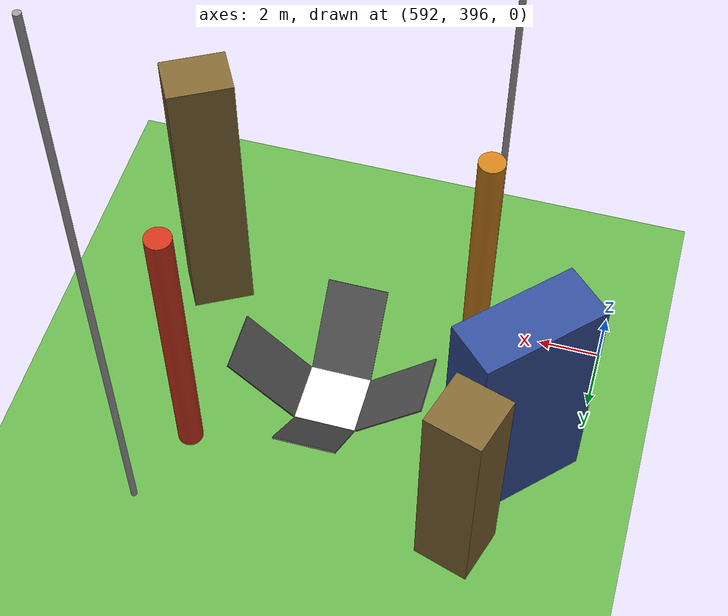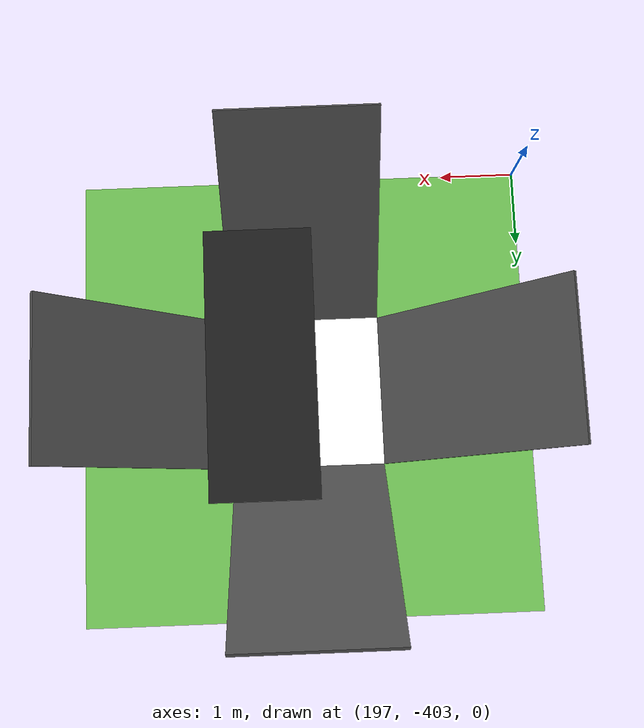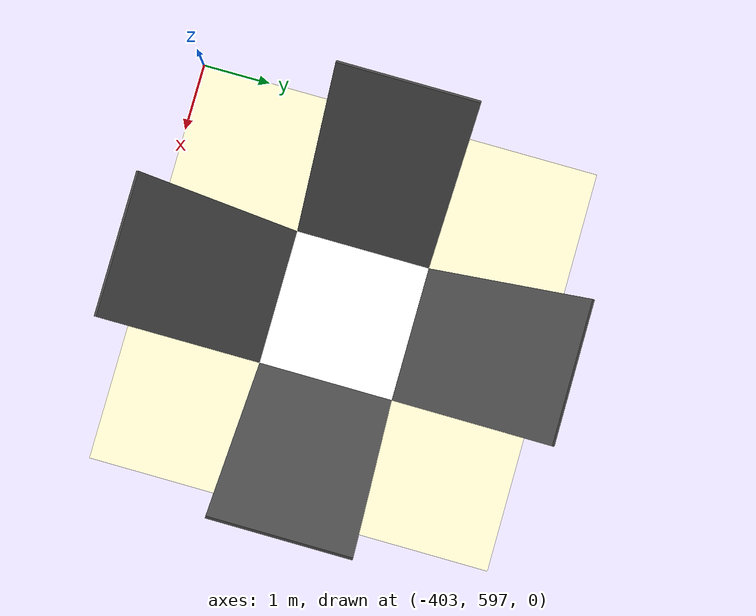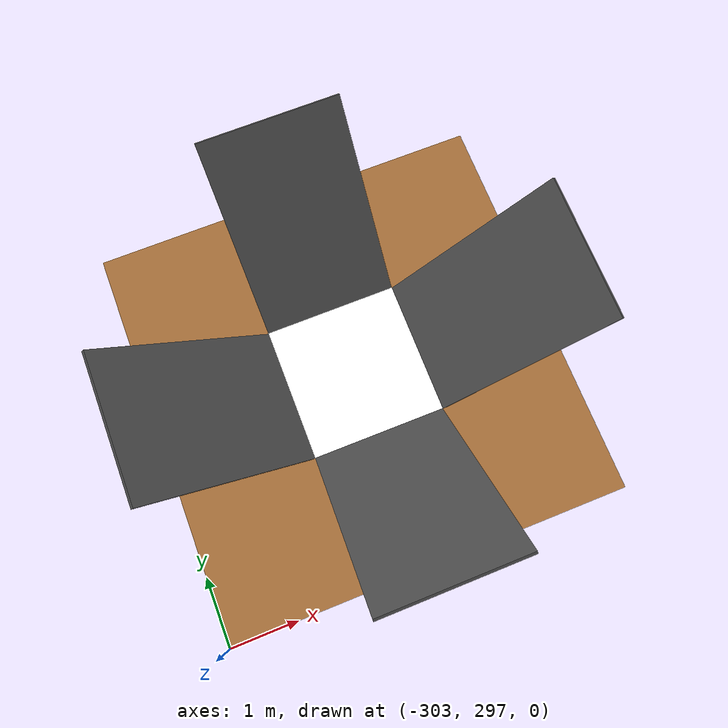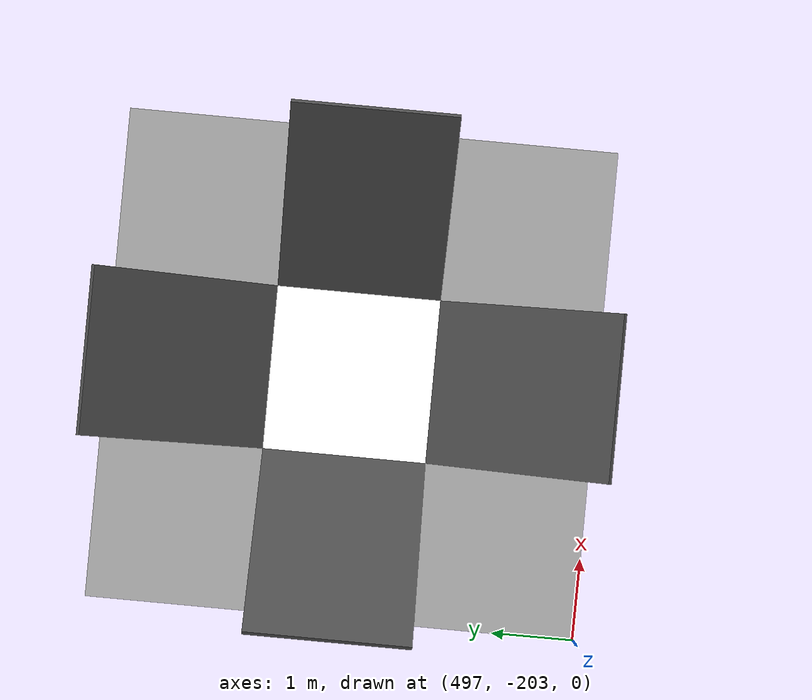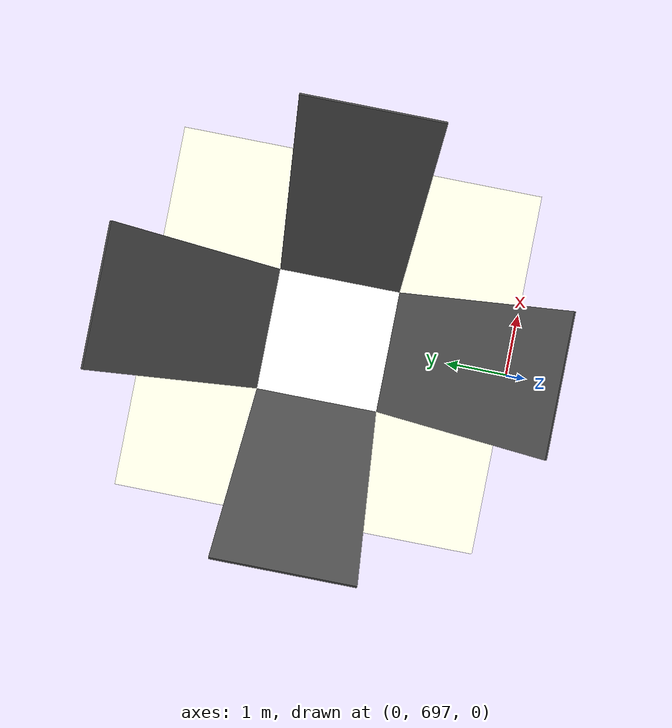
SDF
<sdf version="1.9">
 <world name="zephyr_runway">
  <physics name="1ms" type="ignore">
   <max_step_size>0.001</max_step_size>
   <real_time_factor>1.0</real_time_factor>
  </physics>
  <plugin filename="gz-sim-physics-system" name="gz::sim::systems::Physics"/>
  <plugin filename="gz-sim-user-commands-system" name="gz::sim::systems::UserCommands"/>
  <plugin filename="gz-sim-scene-broadcaster-system" name="gz::sim::systems::SceneBroadcaster"/>
  <plugin filename="gz-sim-imu-system" name="gz::sim::systems::Imu"/>
  <plugin filename="gz-sim-navsat-system" name="gz::sim::systems::NavSat"/>
  <plugin filename="gz-sim-sensors-system" name="gz::sim::systems::Sensors">
   <render_engine>ogre2</render_engine>
  </plugin>
  <scene><ambient>1.0 1.0 1.0</ambient><background>0.8 0.8 0.8</background></scene>
  <spherical_coordinates>
   <latitude_deg>-35.363262</latitude_deg>
   <longitude_deg>149.165237</longitude_deg>
   <elevation>584</elevation>
   <heading_deg>0</heading_deg>
   <surface_model>EARTH_WGS84</surface_model>
  </spherical_coordinates>
  <light type="directional" name="sun_light">
   <pose>0 0 10 0 0 0</pose>
   <diffuse>0.8 0.8 0.8 1</diffuse>
   <specular>0.8 0.8 0.8 1</specular>
   <attenuation>
    <range>1000</range>
    <constant>0.9</constant>
    <linear>0.01</linear>
    <quadratic>0.001</quadratic>
   </attenuation>
   <direction>-0.5 0.1 -0.9</direction>
  </light>
  <include><uri>model://qr_target</uri><pose>-29 500 0.01 0 0 0</pose></include>
  <include><uri>model://qr_toprak</uri><pose>-300 300 0.01 0 0 0</pose></include>
  <include><uri>model://qr_beton</uri><pose>500 -200 0.01 0 0 0</pose></include>
  <include><uri>model://qr_karisik</uri><pose>-500 -200 0.01 0 0 0</pose></include>
  <include><uri>model://qr_parlak</uri><pose>0 700 0.01 0 0 0</pose></include>
  <include><uri>model://qr_golge</uri><pose>400 600 0.01 0 0 0</pose></include>
  <include><uri>model://qr_karsiaydinlatma</uri><pose>-400 600 0.01 0 0 0</pose></include>
  <include><uri>model://qr_kismigolge</uri><pose>200 -400 0.01 0 0 0</pose></include>
  <include><uri>model://qr_egimli</uri><pose>-200 -400 0.01 0 0 0</pose></include>
  <include><uri>model://qr_engelli</uri><pose>600 400 0.01 0 0 0</pose></include>
  <model name="ground_plane">
   <static>true</static>
   <link name="link">
    <collision name="collision">
     <geometry><plane><normal>0 0 1</normal><size>5000 5000</size></plane></geometry>
     <surface><friction><ode><mu>1</mu><mu2>1</mu2></ode></friction></surface>
    </collision>
   </link>
  </model>
 </world>
</sdf>

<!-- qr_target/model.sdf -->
<sdf version="1.9">
  <model name="qr_target">
    <static>true</static>

    <link name="link">
      <visual name="visual">
        <geometry>
          <plane>
            <normal>0 0 1</normal>
            <size>2 2</size>
          </plane>
        </geometry>
        <material>
          <diffuse>1 1 1 1</diffuse>
          <specular>0 0 0 1</specular>
          <pbr>
            <metal>
              <albedo_map>materials/textures/qr_code.png</albedo_map>
            </metal>
          </pbr>
        </material>
      </visual>
    </link>

    <link name="plate_north">
      <pose>0 2.0606 1.0606 -0.785398 0 0</pose>
      <visual name="visual">
        <geometry>
          <box><size>2 0.05 3</size></box>
        </geometry>
        <material>
          <ambient>0.3 0.3 0.3 1</ambient>
          <diffuse>0.3 0.3 0.3 1</diffuse>
        </material>
      </visual>
    </link>

    <link name="plate_south">
      <pose>0 -2.0606 1.0606 0.785398 0 0</pose>
      <visual name="visual">
        <geometry>
          <box><size>2 0.05 3</size></box>
        </geometry>
        <material>
          <ambient>0.3 0.3 0.3 1</ambient>
          <diffuse>0.3 0.3 0.3 1</diffuse>
        </material>
      </visual>
    </link>

    <link name="plate_east">
      <pose>2.0606 0 1.0606 0 0.785398 0</pose>
      <visual name="visual">
        <geometry>
          <box><size>0.05 2 3</size></box>
        </geometry>
        <material>
          <ambient>0.3 0.3 0.3 1</ambient>
          <diffuse>0.3 0.3 0.3 1</diffuse>
        </material>
      </visual>
    </link>

    <link name="plate_west">
      <pose>-2.0606 0 1.0606 0 -0.785398 0</pose>
      <visual name="visual">
        <geometry>
          <box><size>0.05 2 3</size></box>
        </geometry>
        <material>
          <ambient>0.3 0.3 0.3 1</ambient>
          <diffuse>0.3 0.3 0.3 1</diffuse>
        </material>
      </visual>
    </link>

  </model>
</sdf>

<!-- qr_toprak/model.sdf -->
<sdf version="1.9">
  <model name="qr_toprak">
    <static>true</static>

    <!-- Zemin -->
    <link name="ground">

      <visual name="visual">
        <geometry>
          <box><size>6 6 0.05</size></box>
        </geometry>
        <material>
          <ambient>0.6 0.4 0.2 1</ambient>
          <diffuse>0.6 0.4 0.2 1</diffuse>
        </material>
      </visual>
    </link>

    <!-- QR kod 2x2m -->
    <link name="link">
      <pose>0 0 0.06 0 0 0</pose>
      <visual name="visual">
        <geometry>
          <plane>
            <normal>0 0 1</normal>
            <size>2 2</size>
          </plane>
        </geometry>
        <material>
          <diffuse>1 1 1 1</diffuse>
          <specular>0 0 0 1</specular>
          <pbr>
            <metal>
              <albedo_map>materials/textures/qr_code.png</albedo_map>
            </metal>
          </pbr>
        </material>
      </visual>
    </link>

    <!-- Kuzey plaka -->
    <link name="plate_north">
      <pose>0 2.0606 1.0606 -0.785398 0 0</pose>
      <visual name="visual">
        <geometry><box><size>2 0.05 3</size></box></geometry>
        <material><ambient>0.3 0.3 0.3 1</ambient><diffuse>0.3 0.3 0.3 1</diffuse></material>
      </visual>
    </link>

    <!-- Guney plaka -->
    <link name="plate_south">
      <pose>0 -2.0606 1.0606 0.785398 0 0</pose>
      <visual name="visual">
        <geometry><box><size>2 0.05 3</size></box></geometry>
        <material><ambient>0.3 0.3 0.3 1</ambient><diffuse>0.3 0.3 0.3 1</diffuse></material>
      </visual>
    </link>

    <!-- Dogu plaka -->
    <link name="plate_east">
      <pose>2.0606 0 1.0606 0 0.785398 0</pose>
      <visual name="visual">
        <geometry><box><size>0.05 2 3</size></box></geometry>
        <material><ambient>0.3 0.3 0.3 1</ambient><diffuse>0.3 0.3 0.3 1</diffuse></material>
      </visual>
    </link>

    <!-- Bati plaka -->
    <link name="plate_west">
      <pose>-2.0606 0 1.0606 0 -0.785398 0</pose>
      <visual name="visual">
        <geometry><box><size>0.05 2 3</size></box></geometry>
        <material><ambient>0.3 0.3 0.3 1</ambient><diffuse>0.3 0.3 0.3 1</diffuse></material>
      </visual>
    </link>

  </model>
</sdf>

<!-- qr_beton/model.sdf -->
<sdf version="1.9">
  <model name="qr_beton">
    <static>true</static>

    <!-- Zemin -->
    <link name="ground">

      <visual name="visual">
        <geometry>
          <box><size>6 6 0.05</size></box>
        </geometry>
        <material>
          <ambient>0.6 0.6 0.6 1</ambient>
          <diffuse>0.6 0.6 0.6 1</diffuse>
        </material>
      </visual>
    </link>

    <!-- QR kod 2x2m -->
    <link name="link">
      <pose>0 0 0.06 0 0 0</pose>
      <visual name="visual">
        <geometry>
          <plane>
            <normal>0 0 1</normal>
            <size>2 2</size>
          </plane>
        </geometry>
        <material>
          <diffuse>1 1 1 1</diffuse>
          <specular>0 0 0 1</specular>
          <pbr>
            <metal>
              <albedo_map>materials/textures/qr_code.png</albedo_map>
            </metal>
          </pbr>
        </material>
      </visual>
    </link>

    <!-- Kuzey plaka -->
    <link name="plate_north">
      <pose>0 2.0606 1.0606 -0.785398 0 0</pose>
      <visual name="visual">
        <geometry><box><size>2 0.05 3</size></box></geometry>
        <material><ambient>0.3 0.3 0.3 1</ambient><diffuse>0.3 0.3 0.3 1</diffuse></material>
      </visual>
    </link>

    <!-- Guney plaka -->
    <link name="plate_south">
      <pose>0 -2.0606 1.0606 0.785398 0 0</pose>
      <visual name="visual">
        <geometry><box><size>2 0.05 3</size></box></geometry>
        <material><ambient>0.3 0.3 0.3 1</ambient><diffuse>0.3 0.3 0.3 1</diffuse></material>
      </visual>
    </link>

    <!-- Dogu plaka -->
    <link name="plate_east">
      <pose>2.0606 0 1.0606 0 0.785398 0</pose>
      <visual name="visual">
        <geometry><box><size>0.05 2 3</size></box></geometry>
        <material><ambient>0.3 0.3 0.3 1</ambient><diffuse>0.3 0.3 0.3 1</diffuse></material>
      </visual>
    </link>

    <!-- Bati plaka -->
    <link name="plate_west">
      <pose>-2.0606 0 1.0606 0 -0.785398 0</pose>
      <visual name="visual">
        <geometry><box><size>0.05 2 3</size></box></geometry>
        <material><ambient>0.3 0.3 0.3 1</ambient><diffuse>0.3 0.3 0.3 1</diffuse></material>
      </visual>
    </link>

  </model>
</sdf>

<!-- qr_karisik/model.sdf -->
<sdf version="1.9">
  <model name="qr_karisik">
    <static>true</static>

    <!-- Zemin -->
    <link name="ground">

      <visual name="visual">
        <geometry>
          <box><size>6 6 0.05</size></box>
        </geometry>
        <material>
          <ambient>0.5 0.55 0.3 1</ambient>
          <diffuse>0.5 0.55 0.3 1</diffuse>
        </material>
      </visual>
    </link>

    <!-- QR kod 2x2m -->
    <link name="link">
      <pose>0 0 0.06 0 0 0</pose>
      <visual name="visual">
        <geometry>
          <plane>
            <normal>0 0 1</normal>
            <size>2 2</size>
          </plane>
        </geometry>
        <material>
          <diffuse>1 1 1 1</diffuse>
          <specular>0 0 0 1</specular>
          <pbr>
            <metal>
              <albedo_map>materials/textures/qr_code.png</albedo_map>
            </metal>
          </pbr>
        </material>
      </visual>
    </link>

    <!-- Kuzey plaka -->
    <link name="plate_north">
      <pose>0 2.0606 1.0606 -0.785398 0 0</pose>
      <visual name="visual">
        <geometry><box><size>2 0.05 3</size></box></geometry>
        <material><ambient>0.3 0.3 0.3 1</ambient><diffuse>0.3 0.3 0.3 1</diffuse></material>
      </visual>
    </link>

    <!-- Guney plaka -->
    <link name="plate_south">
      <pose>0 -2.0606 1.0606 0.785398 0 0</pose>
      <visual name="visual">
        <geometry><box><size>2 0.05 3</size></box></geometry>
        <material><ambient>0.3 0.3 0.3 1</ambient><diffuse>0.3 0.3 0.3 1</diffuse></material>
      </visual>
    </link>

    <!-- Dogu plaka -->
    <link name="plate_east">
      <pose>2.0606 0 1.0606 0 0.785398 0</pose>
      <visual name="visual">
        <geometry><box><size>0.05 2 3</size></box></geometry>
        <material><ambient>0.3 0.3 0.3 1</ambient><diffuse>0.3 0.3 0.3 1</diffuse></material>
      </visual>
    </link>

    <!-- Bati plaka -->
    <link name="plate_west">
      <pose>-2.0606 0 1.0606 0 -0.785398 0</pose>
      <visual name="visual">
        <geometry><box><size>0.05 2 3</size></box></geometry>
        <material><ambient>0.3 0.3 0.3 1</ambient><diffuse>0.3 0.3 0.3 1</diffuse></material>
      </visual>
    </link>

  </model>
</sdf>

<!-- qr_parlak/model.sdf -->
<sdf version="1.9">
  <model name="qr_parlak">
    <static>true</static>

    <!-- Zemin -->
    <link name="ground">

      <visual name="visual">
        <geometry>
          <box><size>6 6 0.05</size></box>
        </geometry>
        <material>
          <ambient>1.0 1.0 0.9 1</ambient>
          <diffuse>1.0 1.0 0.9 1</diffuse>
        </material>
      </visual>
    </link>

    <!-- QR kod 2x2m -->
    <link name="link">
      <pose>0 0 0.06 0 0 0</pose>
      <visual name="visual">
        <geometry>
          <plane>
            <normal>0 0 1</normal>
            <size>2 2</size>
          </plane>
        </geometry>
        <material>
          <diffuse>1 1 1 1</diffuse>
          <specular>0 0 0 1</specular>
          <pbr>
            <metal>
              <albedo_map>materials/textures/qr_code.png</albedo_map>
            </metal>
          </pbr>
        </material>
      </visual>
    </link>

    <!-- Kuzey plaka -->
    <link name="plate_north">
      <pose>0 2.0606 1.0606 -0.785398 0 0</pose>
      <visual name="visual">
        <geometry><box><size>2 0.05 3</size></box></geometry>
        <material><ambient>0.3 0.3 0.3 1</ambient><diffuse>0.3 0.3 0.3 1</diffuse></material>
      </visual>
    </link>

    <!-- Guney plaka -->
    <link name="plate_south">
      <pose>0 -2.0606 1.0606 0.785398 0 0</pose>
      <visual name="visual">
        <geometry><box><size>2 0.05 3</size></box></geometry>
        <material><ambient>0.3 0.3 0.3 1</ambient><diffuse>0.3 0.3 0.3 1</diffuse></material>
      </visual>
    </link>

    <!-- Dogu plaka -->
    <link name="plate_east">
      <pose>2.0606 0 1.0606 0 0.785398 0</pose>
      <visual name="visual">
        <geometry><box><size>0.05 2 3</size></box></geometry>
        <material><ambient>0.3 0.3 0.3 1</ambient><diffuse>0.3 0.3 0.3 1</diffuse></material>
      </visual>
    </link>

    <!-- Bati plaka -->
    <link name="plate_west">
      <pose>-2.0606 0 1.0606 0 -0.785398 0</pose>
      <visual name="visual">
        <geometry><box><size>0.05 2 3</size></box></geometry>
        <material><ambient>0.3 0.3 0.3 1</ambient><diffuse>0.3 0.3 0.3 1</diffuse></material>
      </visual>
    </link>

  </model>
</sdf>

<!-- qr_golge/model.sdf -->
<sdf version="1.9">
  <model name="qr_golge">
    <static>true</static>

    <!-- Zemin -->
    <link name="ground">

      <visual name="visual">
        <geometry>
          <box><size>6 6 0.05</size></box>
        </geometry>
        <material>
          <ambient>0.15 0.15 0.15 1</ambient>
          <diffuse>0.2 0.2 0.2 1</diffuse>
        </material>
      </visual>
    </link>

    <!-- QR kod 2x2m -->
    <link name="link">
      <pose>0 0 0.06 0 0 0</pose>
      <visual name="visual">
        <geometry>
          <plane>
            <normal>0 0 1</normal>
            <size>2 2</size>
          </plane>
        </geometry>
        <material>
          <diffuse>1 1 1 1</diffuse>
          <specular>0 0 0 1</specular>
          <pbr>
            <metal>
              <albedo_map>materials/textures/qr_code.png</albedo_map>
            </metal>
          </pbr>
        </material>
      </visual>
    </link>

    <!-- Kuzey plaka -->
    <link name="plate_north">
      <pose>0 2.0606 1.0606 -0.785398 0 0</pose>
      <visual name="visual">
        <geometry><box><size>2 0.05 3</size></box></geometry>
        <material><ambient>0.3 0.3 0.3 1</ambient><diffuse>0.3 0.3 0.3 1</diffuse></material>
      </visual>
    </link>

    <!-- Guney plaka -->
    <link name="plate_south">
      <pose>0 -2.0606 1.0606 0.785398 0 0</pose>
      <visual name="visual">
        <geometry><box><size>2 0.05 3</size></box></geometry>
        <material><ambient>0.3 0.3 0.3 1</ambient><diffuse>0.3 0.3 0.3 1</diffuse></material>
      </visual>
    </link>

    <!-- Dogu plaka -->
    <link name="plate_east">
      <pose>2.0606 0 1.0606 0 0.785398 0</pose>
      <visual name="visual">
        <geometry><box><size>0.05 2 3</size></box></geometry>
        <material><ambient>0.3 0.3 0.3 1</ambient><diffuse>0.3 0.3 0.3 1</diffuse></material>
      </visual>
    </link>

    <!-- Bati plaka -->
    <link name="plate_west">
      <pose>-2.0606 0 1.0606 0 -0.785398 0</pose>
      <visual name="visual">
        <geometry><box><size>0.05 2 3</size></box></geometry>
        <material><ambient>0.3 0.3 0.3 1</ambient><diffuse>0.3 0.3 0.3 1</diffuse></material>
      </visual>
    </link>

  </model>
</sdf>

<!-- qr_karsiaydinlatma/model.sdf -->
<sdf version="1.9">
  <model name="qr_karsiaydinlatma">
    <static>true</static>

    <!-- Zemin -->
    <link name="ground">

      <visual name="visual">
        <geometry>
          <box><size>6 6 0.05</size></box>
        </geometry>
        <material>
          <ambient>1.0 0.95 0.8 1</ambient>
          <diffuse>1.0 0.95 0.8 1</diffuse>
        </material>
      </visual>
    </link>

    <!-- QR kod 2x2m -->
    <link name="link">
      <pose>0 0 0.06 0 0 0</pose>
      <visual name="visual">
        <geometry>
          <plane>
            <normal>0 0 1</normal>
            <size>2 2</size>
          </plane>
        </geometry>
        <material>
          <diffuse>1 1 1 1</diffuse>
          <specular>0 0 0 1</specular>
          <pbr>
            <metal>
              <albedo_map>materials/textures/qr_code.png</albedo_map>
            </metal>
          </pbr>
        </material>
      </visual>
    </link>

    <!-- Kuzey plaka -->
    <link name="plate_north">
      <pose>0 2.0606 1.0606 -0.785398 0 0</pose>
      <visual name="visual">
        <geometry><box><size>2 0.05 3</size></box></geometry>
        <material><ambient>0.3 0.3 0.3 1</ambient><diffuse>0.3 0.3 0.3 1</diffuse></material>
      </visual>
    </link>

    <!-- Guney plaka -->
    <link name="plate_south">
      <pose>0 -2.0606 1.0606 0.785398 0 0</pose>
      <visual name="visual">
        <geometry><box><size>2 0.05 3</size></box></geometry>
        <material><ambient>0.3 0.3 0.3 1</ambient><diffuse>0.3 0.3 0.3 1</diffuse></material>
      </visual>
    </link>

    <!-- Dogu plaka -->
    <link name="plate_east">
      <pose>2.0606 0 1.0606 0 0.785398 0</pose>
      <visual name="visual">
        <geometry><box><size>0.05 2 3</size></box></geometry>
        <material><ambient>0.3 0.3 0.3 1</ambient><diffuse>0.3 0.3 0.3 1</diffuse></material>
      </visual>
    </link>

    <!-- Bati plaka -->
    <link name="plate_west">
      <pose>-2.0606 0 1.0606 0 -0.785398 0</pose>
      <visual name="visual">
        <geometry><box><size>0.05 2 3</size></box></geometry>
        <material><ambient>0.3 0.3 0.3 1</ambient><diffuse>0.3 0.3 0.3 1</diffuse></material>
      </visual>
    </link>

  </model>
</sdf>

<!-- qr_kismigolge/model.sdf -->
<sdf version="1.9">
  <model name="qr_kismigolge">
    <static>true</static>

    <link name="ground">
      <visual name="visual">
        <geometry><box><size>6 6 0.05</size></box></geometry>
        <material>
          <ambient>0.4 0.7 0.3 1</ambient>
          <diffuse>0.4 0.7 0.3 1</diffuse>
        </material>
      </visual>
    </link>

    <!-- QR kod -->
    <link name="link">
      <pose>0 0 0.06 0 0 0</pose>
      <visual name="visual">
        <geometry>
          <plane>
            <normal>0 0 1</normal>
            <size>2 2</size>
          </plane>
        </geometry>
        <material>
          <diffuse>1 1 1 1</diffuse>
          <specular>0 0 0 1</specular>
          <pbr>
            <metal>
              <albedo_map>materials/textures/qr_code.png</albedo_map>
            </metal>
          </pbr>
        </material>
      </visual>
    </link>

    <!-- QR'ın yarısını kapatan gölge plakası -->
    <link name="shadow_plate">
      <pose>0.5 0 2.5 0 0 0</pose>
      <visual name="visual">
        <geometry><box><size>1.2 3 0.05</size></box></geometry>
        <material>
          <ambient>0.1 0.1 0.1 1</ambient>
          <diffuse>0.1 0.1 0.1 1</diffuse>
        </material>
      </visual>
    </link>

    <!-- Gölge plakasının direği -->
    <link name="shadow_pole">
      <pose>0.5 0 1.2 0 0 0</pose>
      <visual name="visual">
        <geometry><box><size>0.1 0.1 2.5</size></box></geometry>
        <material>
          <ambient>0.2 0.2 0.2 1</ambient>
          <diffuse>0.2 0.2 0.2 1</diffuse>
        </material>
      </visual>
    </link>

    <link name="plate_north">
      <pose>0 2.0606 1.0606 -0.785398 0 0</pose>
      <visual name="visual">
        <geometry><box><size>2 0.05 3</size></box></geometry>
        <material><ambient>0.3 0.3 0.3 1</ambient><diffuse>0.3 0.3 0.3 1</diffuse></material>
      </visual>
    </link>
    <link name="plate_south">
      <pose>0 -2.0606 1.0606 0.785398 0 0</pose>
      <visual name="visual">
        <geometry><box><size>2 0.05 3</size></box></geometry>
        <material><ambient>0.3 0.3 0.3 1</ambient><diffuse>0.3 0.3 0.3 1</diffuse></material>
      </visual>
    </link>
    <link name="plate_east">
      <pose>2.0606 0 1.0606 0 0.785398 0</pose>
      <visual name="visual">
        <geometry><box><size>0.05 2 3</size></box></geometry>
        <material><ambient>0.3 0.3 0.3 1</ambient><diffuse>0.3 0.3 0.3 1</diffuse></material>
      </visual>
    </link>
    <link name="plate_west">
      <pose>-2.0606 0 1.0606 0 -0.785398 0</pose>
      <visual name="visual">
        <geometry><box><size>0.05 2 3</size></box></geometry>
        <material><ambient>0.3 0.3 0.3 1</ambient><diffuse>0.3 0.3 0.3 1</diffuse></material>
      </visual>
    </link>

  </model>
</sdf>

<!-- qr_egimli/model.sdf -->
<sdf version="1.9">
  <model name="qr_egimli">
    <static>true</static>

    <!-- Tüm model 12 derece eğimli ve 0.5m havada -->
    <link name="link">
      <pose>0 0 0.5 0.2094 0 0</pose>
      <visual name="visual">
        <geometry>
          <box><size>2 2 0.01</size></box>
        </geometry>
        <material>
          <diffuse>1 1 1 1</diffuse>
          <specular>0 0 0 1</specular>
          <pbr>
            <metal>
              <albedo_map>materials/textures/qr_code.png</albedo_map>
            </metal>
          </pbr>
        </material>
      </visual>
    </link>

    <link name="plate_north">
      <pose>0 2.0606 1.5 -0.785398 0 0</pose>
      <visual name="visual">
        <geometry><box><size>2 0.05 3</size></box></geometry>
        <material><ambient>0.3 0.3 0.3 1</ambient><diffuse>0.3 0.3 0.3 1</diffuse></material>
      </visual>
    </link>
    <link name="plate_south">
      <pose>0 -2.0606 1.5 0.785398 0 0</pose>
      <visual name="visual">
        <geometry><box><size>2 0.05 3</size></box></geometry>
        <material><ambient>0.3 0.3 0.3 1</ambient><diffuse>0.3 0.3 0.3 1</diffuse></material>
      </visual>
    </link>
    <link name="plate_east">
      <pose>2.0606 0 1.5 0 0.785398 0</pose>
      <visual name="visual">
        <geometry><box><size>0.05 2 3</size></box></geometry>
        <material><ambient>0.3 0.3 0.3 1</ambient><diffuse>0.3 0.3 0.3 1</diffuse></material>
      </visual>
    </link>
    <link name="plate_west">
      <pose>-2.0606 0 1.5 0 -0.785398 0</pose>
      <visual name="visual">
        <geometry><box><size>0.05 2 3</size></box></geometry>
        <material><ambient>0.3 0.3 0.3 1</ambient><diffuse>0.3 0.3 0.3 1</diffuse></material>
      </visual>
    </link>

  </model>
</sdf>

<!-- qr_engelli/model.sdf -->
<sdf version="1.9">
  <model name="qr_engelli">
    <static>true</static>

    <link name="ground">
      <visual name="visual">
        <geometry><box><size>20 20 0.05</size></box></geometry>
        <material>
          <ambient>0.4 0.7 0.3 1</ambient>
          <diffuse>0.4 0.7 0.3 1</diffuse>
        </material>
      </visual>
    </link>

    <link name="link">
      <pose>0 0 0.06 0 0 0</pose>
      <visual name="visual">
        <geometry>
          <plane>
            <normal>0 0 1</normal>
            <size>2 2</size>
          </plane>
        </geometry>
        <material>
          <diffuse>1 1 1 1</diffuse>
          <specular>0 0 0 1</specular>
          <pbr>
            <metal>
              <albedo_map>materials/textures/qr_code.png</albedo_map>
            </metal>
          </pbr>
        </material>
      </visual>
    </link>

    <!-- Varil 1 - 10m yüksek -->
    <link name="barrel1">
      <pose>4 2.5 5.0 0 0 0</pose>
      <visual name="visual">
        <geometry><cylinder><radius>0.4</radius><length>10.0</length></cylinder></geometry>
        <material><ambient>0.8 0.2 0.1 1</ambient><diffuse>0.8 0.2 0.1 1</diffuse></material>
      </visual>
    </link>

    <!-- Varil 2 - 10m yüksek -->
    <link name="barrel2">
      <pose>-4 -2.5 5.0 0 0 0</pose>
      <visual name="visual">
        <geometry><cylinder><radius>0.4</radius><length>10.0</length></cylinder></geometry>
        <material><ambient>0.8 0.5 0.1 1</ambient><diffuse>0.8 0.5 0.1 1</diffuse></material>
      </visual>
    </link>

    <!-- Kasa 1 - 10m yüksek -->
    <link name="box1">
      <pose>5 -3.5 5.0 0 0 0.5</pose>
      <visual name="visual">
        <geometry><box><size>2.0 1.5 10.0</size></box></geometry>
        <material><ambient>0.5 0.4 0.2 1</ambient><diffuse>0.5 0.4 0.2 1</diffuse></material>
      </visual>
    </link>

    <!-- Kasa 2 - 7.5m yüksek -->
    <link name="box2">
      <pose>-5 4 3.75 0 0 -0.3</pose>
      <visual name="visual">
        <geometry><box><size>1.8 1.8 7.5</size></box></geometry>
        <material><ambient>0.5 0.4 0.2 1</ambient><diffuse>0.5 0.4 0.2 1</diffuse></material>
      </visual>
    </link>

    <!-- Direk 1 - 25m -->
    <link name="pole1">
      <pose>-4 -5 12.5 0 0 0</pose>
      <visual name="visual">
        <geometry><cylinder><radius>0.1</radius><length>25.0</length></cylinder></geometry>
        <material><ambient>0.6 0.6 0.6 1</ambient><diffuse>0.6 0.6 0.6 1</diffuse></material>
      </visual>
    </link>

    <!-- Direk 2 - 20m -->
    <link name="pole2">
      <pose>5 5 10.0 0 0 0</pose>
      <visual name="visual">
        <geometry><cylinder><radius>0.1</radius><length>20.0</length></cylinder></geometry>
        <material><ambient>0.6 0.6 0.6 1</ambient><diffuse>0.6 0.6 0.6 1</diffuse></material>
      </visual>
    </link>

    <!-- Araç - 8m yüksek -->
    <link name="vehicle">
      <pose>-6 1 4.0 0 0 0.8</pose>
      <visual name="visual">
        <geometry><box><size>4.0 1.8 8.0</size></box></geometry>
        <material><ambient>0.2 0.3 0.6 1</ambient><diffuse>0.2 0.3 0.6 1</diffuse></material>
      </visual>
    </link>

    <link name="plate_north">
      <pose>0 2.0606 1.0606 -0.785398 0 0</pose>
      <visual name="visual">
        <geometry><box><size>2 0.05 3</size></box></geometry>
        <material><ambient>0.3 0.3 0.3 1</ambient><diffuse>0.3 0.3 0.3 1</diffuse></material>
      </visual>
    </link>
    <link name="plate_south">
      <pose>0 -2.0606 1.0606 0.785398 0 0</pose>
      <visual name="visual">
        <geometry><box><size>2 0.05 3</size></box></geometry>
        <material><ambient>0.3 0.3 0.3 1</ambient><diffuse>0.3 0.3 0.3 1</diffuse></material>
      </visual>
    </link>
    <link name="plate_east">
      <pose>2.0606 0 1.0606 0 0.785398 0</pose>
      <visual name="visual">
        <geometry><box><size>0.05 2 3</size></box></geometry>
        <material><ambient>0.3 0.3 0.3 1</ambient><diffuse>0.3 0.3 0.3 1</diffuse></material>
      </visual>
    </link>
    <link name="plate_west">
      <pose>-2.0606 0 1.0606 0 -0.785398 0</pose>
      <visual name="visual">
        <geometry><box><size>0.05 2 3</size></box></geometry>
        <material><ambient>0.3 0.3 0.3 1</ambient><diffuse>0.3 0.3 0.3 1</diffuse></material>
      </visual>
    </link>

  </model>
</sdf>
